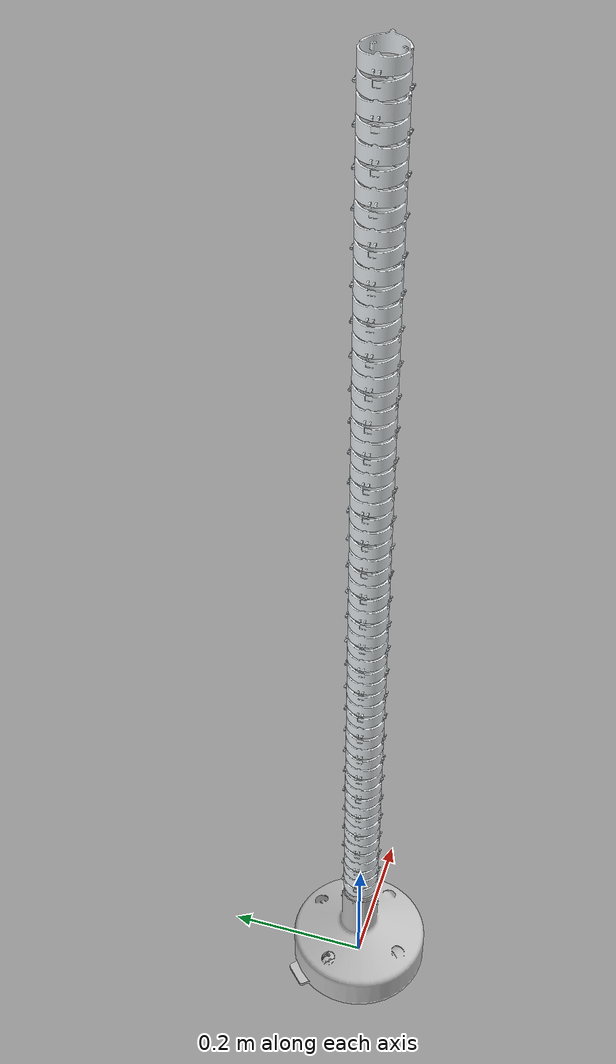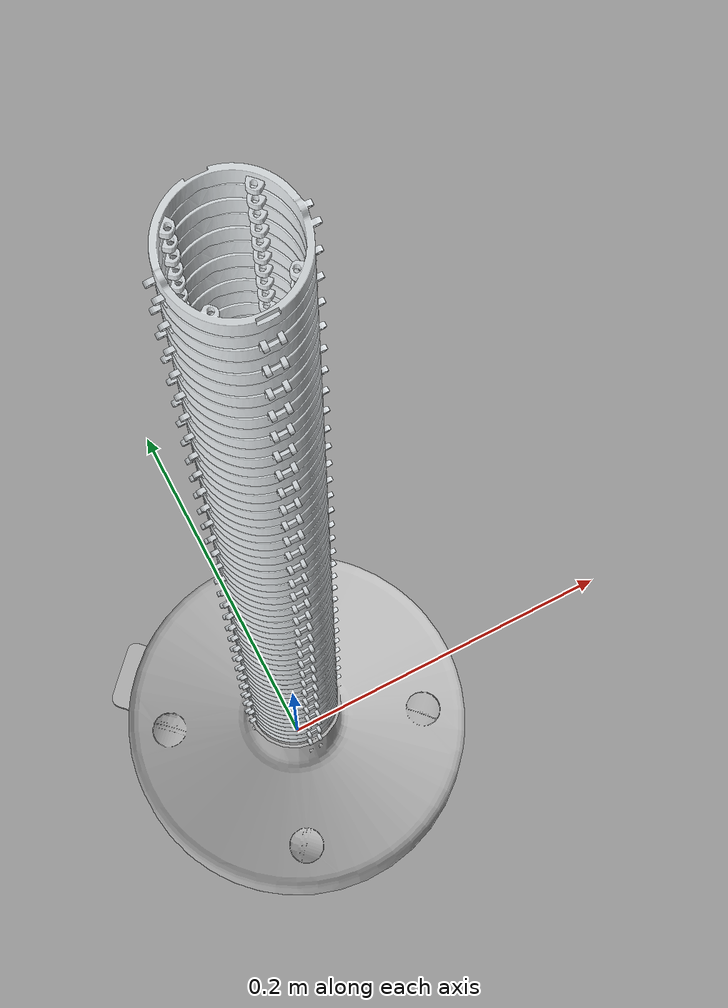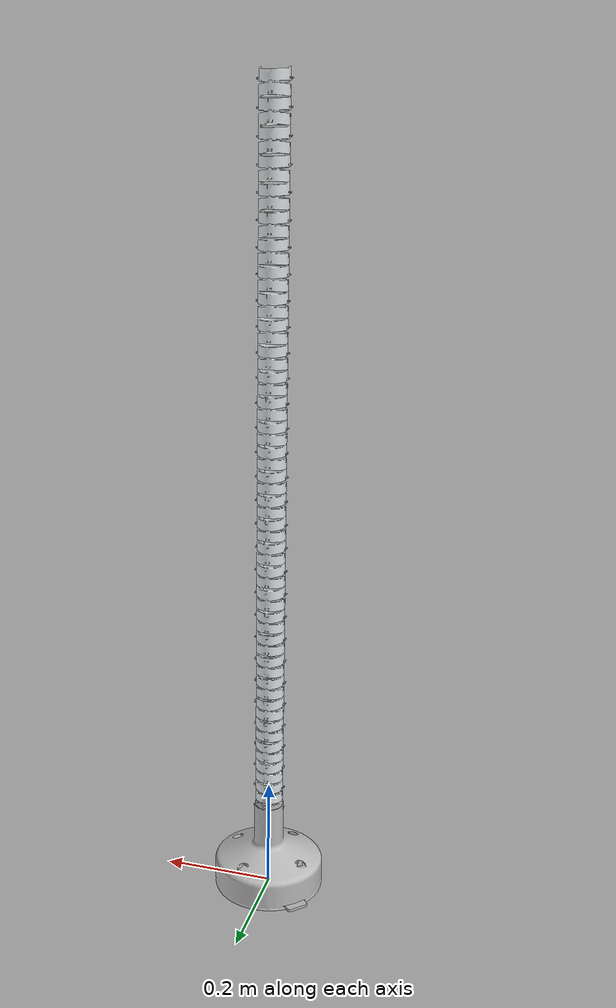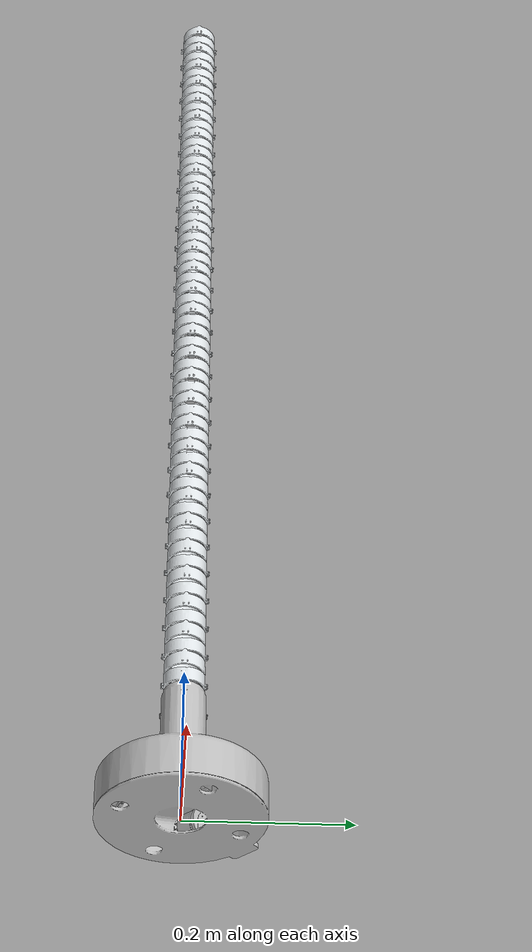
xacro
<?xml version="1.0"?>
<robot name="snake_robot2" xmlns:xacro="http://ros.org/wiki/xacro">
  <xacro:include filename="$(find snake_robot2)/urdf/snake_robot2.xacro" />

  <link name="base_link" />
  <xacro:snake_robot2 parent="base_link" name="snake_robot2" base_joint_type="fixed">
    <origin xyz="0 0 0" rpy="0 0 0"/>
  </xacro:snake_robot2>

</robot>

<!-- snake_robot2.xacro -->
<robot name="snake_robot2" xmlns:xacro="http://ros.org/wiki/xacro">
  <xacro:include filename="$(find snake_robot2)/urdf/base_rail2.xacro" />

  <xacro:macro name="snake_robot2" params="parent *origin name:=snake_robot2 base_joint_type:=prismatic">

    <xacro:base2 parent="${parent}" name="base2" base_joint_type="${base_joint_type}">
      <xacro:insert_block name="origin" />
    </xacro:base2>

    <xacro:rail2 parent="base2_link" name="rail2_1" >
      <origin xyz="0 0 0.1735" rpy="0 0 0"/>
    </xacro:rail2>

    <xacro:rail2 parent="rail2_1_link5" name="rail2_2" >
      <origin xyz="0 0 0.021" rpy="0 0 1.57"/>
    </xacro:rail2>

    <xacro:rail2 parent="rail2_2_link5" name="rail2_3" >
      <origin xyz="0 0 0.021" rpy="0 0 1.57"/>
    </xacro:rail2>

    <xacro:rail2 parent="rail2_3_link5" name="rail2_4" >
      <origin xyz="0 0 0.021" rpy="0 0 1.57"/>
    </xacro:rail2>

    <xacro:rail2 parent="rail2_4_link5" name="rail2_5" >
      <origin xyz="0 0 0.021" rpy="0 0 1.57"/>
    </xacro:rail2>

    <xacro:rail2 parent="rail2_5_link5" name="rail2_6" >
      <origin xyz="0 0 0.021" rpy="0 0 1.57"/>
    </xacro:rail2>

    <xacro:rail2 parent="rail2_6_link5" name="rail2_7" >
      <origin xyz="0 0 0.021" rpy="0 0 1.57"/>
    </xacro:rail2>

    <xacro:rail2 parent="rail2_7_link5" name="rail2_8" >
      <origin xyz="0 0 0.021" rpy="0 0 1.57"/>
    </xacro:rail2>

    <xacro:rail2 parent="rail2_8_link5" name="rail2_9" >
      <origin xyz="0 0 0.021" rpy="0 0 1.57"/>
    </xacro:rail2>

    <xacro:rail2 parent="rail2_9_link5" name="rail2_10" >
      <origin xyz="0 0 0.021" rpy="0 0 1.57"/>
    </xacro:rail2>

    <xacro:rail2 parent="rail2_10_link5" name="rail2_11" >
      <origin xyz="0 0 0.021" rpy="0 0 1.57"/>
    </xacro:rail2>

    <xacro:rail2 parent="rail2_11_link5" name="rail2_12" >
      <origin xyz="0 0 0.021" rpy="0 0 1.57"/>
    </xacro:rail2>
  </xacro:macro>

</robot>

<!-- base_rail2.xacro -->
<robot xmlns:xacro="http://www.ros.org/wiki/xacro" name="base_rail2">
  <xacro:macro name="base2" params="parent *origin name:=base base_joint_type:=prismatic">
    <link
      name="${name}_link">
      <visual>
        <origin
          xyz="0 0 0"
          rpy="0 0 0" />
        <geometry>
          <mesh
            filename="package://snake_robot2/meshes/base_link.STL" />
        </geometry>
        <material
          name="">
          <color
            rgba="0.75294 0.75294 0.75294 1" />
        </material>
      </visual>
      <collision>
        <origin
          xyz="0 0 0"
          rpy="0 0 0" />
        <geometry>
          <mesh
            filename="package://snake_robot2/meshes/base_link.STL" />
        </geometry>
      </collision>
    </link>
    <joint
      name="${name}_joint"
      type="${base_joint_type}">
      <xacro:insert_block name="origin" />
      <parent
        link="${parent}" />
      <child
        link="${name}_link" />
      <axis
        xyz="0 0 1" />
      <limit
      lower="-0.5"
      upper="0.5"
      effort="0"
      velocity="0" />
    </joint>
  </xacro:macro>

  <xacro:macro name="rail2" params="parent *origin name:=rail">
    <link
      name="${name}_link1">
      <inertial>
        <origin
          xyz="5.5313E-09 3.6738E-09 0.010533"
          rpy="0 0 0" />
        <mass
          value="0.018285" />
        <inertia
          ixx="5.7939E-06"
          ixy="-9.0258E-10"
          ixz="-4.854E-14"
          iyy="5.3329E-06"
          iyz="-9.0945E-13"
          izz="1.0221E-05" />
      </inertial>
      <visual>
        <origin
          xyz="0 0 0"
          rpy="0 0 0" />
        <geometry>
          <mesh
            filename="package://snake_robot2/meshes/link1.STL" />
        </geometry>
        <material
          name="">
          <color
            rgba="0.89804 0.91765 0.92941 1" />
        </material>
      </visual>
      <collision>
        <origin
          xyz="0 0 0"
          rpy="0 0 0" />
        <geometry>
          <mesh
            filename="package://snake_robot2/meshes/link1.STL" />
        </geometry>
      </collision>
    </link>
    <joint
      name="${name}_joint1"
      type="revolute">
      <xacro:insert_block name="origin" />
      <parent
        link="${parent}" />
      <child
        link="${name}_link1" />
      <axis
        xyz="1 0 0" />
      <limit
        lower="-0.17"
        upper="0.17"
        effort="0"
        velocity="0" />
    </joint>
    <link
      name="${name}_link2">
      <inertial>
        <origin
          xyz="-3.6738E-09 5.5318E-09 0.010533"
          rpy="0 0 0" />
        <mass
          value="0.018285" />
        <inertia
          ixx="5.3329E-06"
          ixy="9.0258E-10"
          ixz="9.0945E-13"
          iyy="5.7939E-06"
          iyz="-4.854E-14"
          izz="1.0221E-05" />
      </inertial>
      <visual>
        <origin
          xyz="0 0 0"
          rpy="0 0 0" />
        <geometry>
          <mesh
            filename="package://snake_robot2/meshes/link2.STL" />
        </geometry>
        <material
          name="">
          <color
            rgba="0.89804 0.91765 0.92941 1" />
        </material>
      </visual>
      <collision>
        <origin
          xyz="0 0 0"
          rpy="0 0 0" />
        <geometry>
          <mesh
            filename="package://snake_robot2/meshes/link2.STL" />
        </geometry>
      </collision>
    </link>
    <joint
      name="${name}_joint2"
      type="revolute">
      <origin
        xyz="0 0 0.021"
        rpy="0 0 0" />
      <parent
        link="${name}_link1" />
      <child
        link="${name}_link2" />
      <axis
        xyz="0 -1 0" />
      <limit
        lower="-0.17"
        upper="0.17"
        effort="0"
        velocity="0" />
    </joint>
    <link
      name="${name}_link3">
      <inertial>
        <origin
          xyz="5.5313E-09 3.6738E-09 0.010533"
          rpy="0 0 0" />
        <mass
          value="0.018285" />
        <inertia
          ixx="5.7939E-06"
          ixy="-9.0258E-10"
          ixz="-4.854E-14"
          iyy="5.3329E-06"
          iyz="-9.0945E-13"
          izz="1.0221E-05" />
      </inertial>
      <visual>
        <origin
          xyz="0 0 0"
          rpy="0 0 0" />
        <geometry>
          <mesh
            filename="package://snake_robot2/meshes/link3.STL" />
        </geometry>
        <material
          name="">
          <color
            rgba="0.89804 0.91765 0.92941 1" />
        </material>
      </visual>
      <collision>
        <origin
          xyz="0 0 0"
          rpy="0 0 0" />
        <geometry>
          <mesh
            filename="package://snake_robot2/meshes/link3.STL" />
        </geometry>
      </collision>
    </link>
    <joint
      name="${name}_joint3"
      type="revolute">
      <origin
        xyz="0 0 0.021"
        rpy="0 0 0" />
      <parent
        link="${name}_link2" />
      <child
        link="${name}_link3" />
      <axis
        xyz="1 0 0" />
      <limit
        lower="-0.17"
        upper="0.17"
        effort="0"
        velocity="0" />
    </joint>
    <link
      name="${name}_link4">
      <inertial>
        <origin
          xyz="-3.6738E-09 5.5318E-09 0.010533"
          rpy="0 0 0" />
        <mass
          value="0.018285" />
        <inertia
          ixx="5.3329E-06"
          ixy="9.0258E-10"
          ixz="9.0945E-13"
          iyy="5.7939E-06"
          iyz="-4.854E-14"
          izz="1.0221E-05" />
      </inertial>
      <visual>
        <origin
          xyz="0 0 0"
          rpy="0 0 0" />
        <geometry>
          <mesh
            filename="package://snake_robot2/meshes/link4.STL" />
        </geometry>
        <material
          name="">
          <color
            rgba="0.89804 0.91765 0.92941 1" />
        </material>
      </visual>
      <collision>
        <origin
          xyz="0 0 0"
          rpy="0 0 0" />
        <geometry>
          <mesh
            filename="package://snake_robot2/meshes/link4.STL" />
        </geometry>
      </collision>
    </link>
    <joint
      name="${name}_joint4"
      type="revolute">
      <origin
        xyz="0 0 0.021"
        rpy="0 0 0" />
      <parent
        link="${name}_link3" />
      <child
        link="${name}_link4" />
      <axis
        xyz="0 -1 0" />
      <limit
        lower="-0.17"
        upper="0.17"
        effort="0"
        velocity="0" />
    </joint>
    <link
      name="${name}_link5">
      <inertial>
        <origin
          xyz="5.5313E-09 3.6738E-09 0.010533"
          rpy="0 0 0" />
        <mass
          value="0.018285" />
        <inertia
          ixx="5.7939E-06"
          ixy="-9.0258E-10"
          ixz="-4.854E-14"
          iyy="5.3329E-06"
          iyz="-9.0945E-13"
          izz="1.0221E-05" />
      </inertial>
      <visual>
        <origin
          xyz="0 0 0"
          rpy="0 0 0" />
        <geometry>
          <mesh
            filename="package://snake_robot2/meshes/link5.STL" />
        </geometry>
        <material
          name="">
          <color
            rgba="0.89804 0.91765 0.92941 1" />
        </material>
      </visual>
      <collision>
        <origin
          xyz="0 0 0"
          rpy="0 0 0" />
        <geometry>
          <mesh
            filename="package://snake_robot2/meshes/link5.STL" />
        </geometry>
      </collision>
    </link>
    <joint
      name="${name}_joint5"
      type="revolute">
      <origin
        xyz="0 0 0.021"
        rpy="0 0 0" />
      <parent
        link="${name}_link4" />
      <child
        link="${name}_link5" />
      <axis
        xyz="1 0 0" />
      <limit
        lower="-0.17"
        upper="0.17"
        effort="0"
        velocity="0" />
    </joint>
  </xacro:macro>
</robot>
